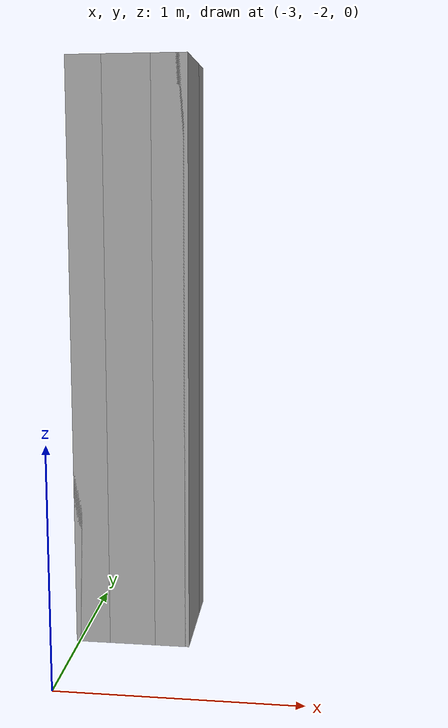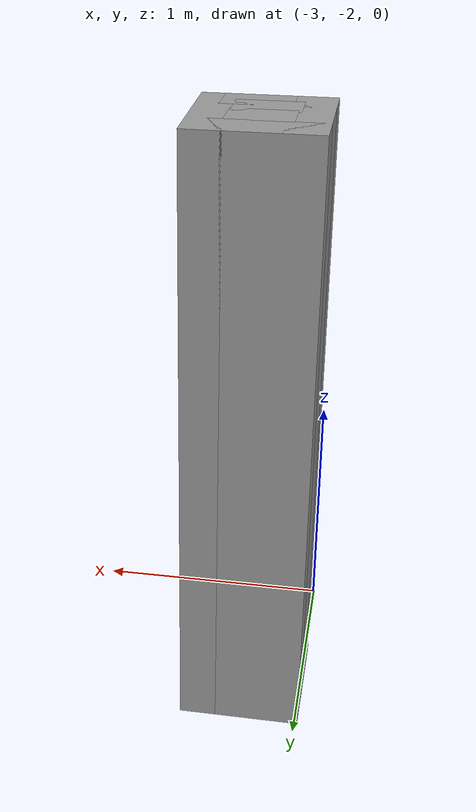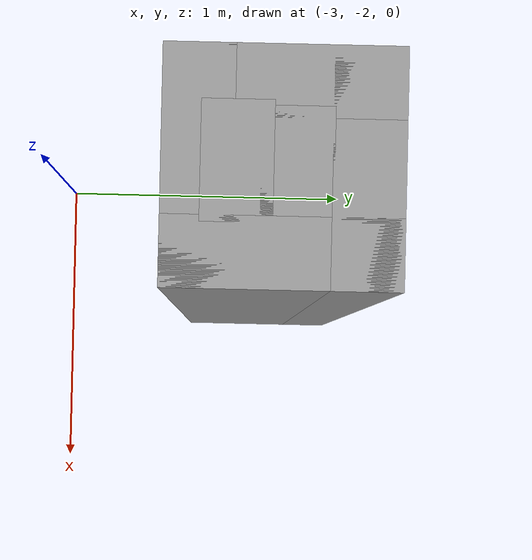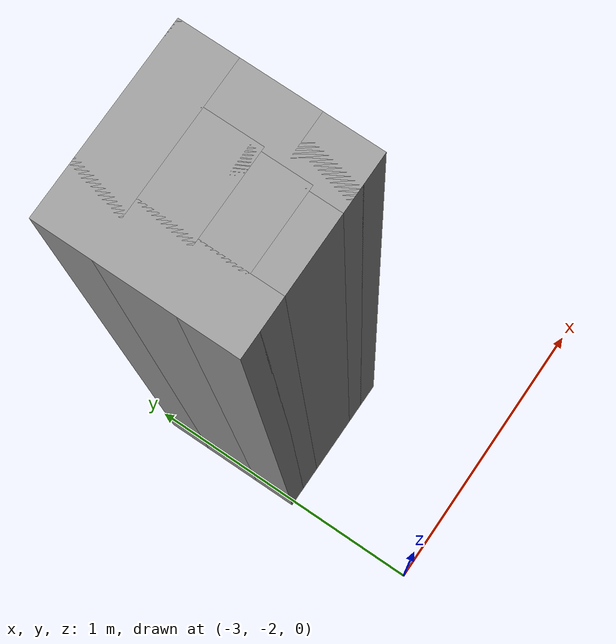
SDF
<?xml version='1.0'?>
<sdf version='1.7'>
  <model name='box05'>
    <pose>-1.50707 -0.773781 0 0 -0 0</pose>
    <link name='Wall_1'>
      <collision name='Wall_1_Collision'>
        <geometry>
          <box>
            <size>0.5 0.15 2.5</size>
          </box>
        </geometry>
        <pose>0 0 1.25 0 -0 0</pose>
      </collision>
      <visual name='Wall_1_Visual'>
        <pose>0 0 1.25 0 -0 0</pose>
        <geometry>
          <box>
            <size>0.5 0.15 2.5</size>
          </box>
        </geometry>
        <material>
          <script>
            <uri>file://media/materials/scripts/gazebo.material</uri>
            <name>Gazebo/Grey</name>
          </script>
          <ambient>1 1 1 1</ambient>
        </material>
        <meta>
          <layer>0</layer>
        </meta>
      </visual>
      <pose>-1.43206 -0.523781 0 0 -0 -1.5708</pose>
    </link>
    <link name='Wall_11'>
      <collision name='Wall_11_Collision'>
        <geometry>
          <box>
            <size>0.25 0.15 2.5</size>
          </box>
        </geometry>
        <pose>0 0 1.25 0 -0 0</pose>
      </collision>
      <visual name='Wall_11_Visual'>
        <pose>0 0 1.25 0 -0 0</pose>
        <geometry>
          <box>
            <size>0.25 0.15 2.5</size>
          </box>
        </geometry>
        <material>
          <script>
            <uri>file://media/materials/scripts/gazebo.material</uri>
            <name>Gazebo/Grey</name>
          </script>
          <ambient>1 1 1 1</ambient>
        </material>
        <meta>
          <layer>0</layer>
        </meta>
      </visual>
      <pose>-1.25682 -0.494826 0 0 -0 0</pose>
    </link>
    <link name='Wall_13'>
      <collision name='Wall_13_Collision'>
        <geometry>
          <box>
            <size>0.25 0.15 2.5</size>
          </box>
        </geometry>
        <pose>0 0 1.25 0 -0 0</pose>
      </collision>
      <visual name='Wall_13_Visual'>
        <pose>0 0 1.25 0 -0 0</pose>
        <geometry>
          <box>
            <size>0.25 0.15 2.5</size>
          </box>
        </geometry>
        <material>
          <script>
            <uri>file://media/materials/scripts/gazebo.material</uri>
            <name>Gazebo/Grey</name>
          </script>
          <ambient>1 1 1 1</ambient>
        </material>
        <meta>
          <layer>0</layer>
        </meta>
      </visual>
      <pose>-1.26803 -0.618185 0 0 -0 0</pose>
    </link>
    <link name='Wall_2'>
      <collision name='Wall_2_Collision'>
        <geometry>
          <box>
            <size>0.5 0.15 2.5</size>
          </box>
        </geometry>
        <pose>0 0 1.25 0 -0 0</pose>
      </collision>
      <visual name='Wall_2_Visual'>
        <pose>0 0 1.25 0 -0 0</pose>
        <geometry>
          <box>
            <size>0.5 0.15 2.5</size>
          </box>
        </geometry>
        <material>
          <script>
            <uri>file://media/materials/scripts/gazebo.material</uri>
            <name>Gazebo/Grey</name>
          </script>
          <ambient>1 1 1 1</ambient>
        </material>
        <meta>
          <layer>0</layer>
        </meta>
      </visual>
      <pose>-1.25707 -0.698781 0 0 -0 0</pose>
    </link>
    <link name='Wall_3'>
      <collision name='Wall_3_Collision'>
        <geometry>
          <box>
            <size>0.5 0.15 2.5</size>
          </box>
        </geometry>
        <pose>0 0 1.25 0 -0 0</pose>
      </collision>
      <visual name='Wall_3_Visual'>
        <pose>0 0 1.25 0 -0 0</pose>
        <geometry>
          <box>
            <size>0.5 0.15 2.5</size>
          </box>
        </geometry>
        <material>
          <script>
            <uri>file://media/materials/scripts/gazebo.material</uri>
            <name>Gazebo/Grey</name>
          </script>
          <ambient>1 1 1 1</ambient>
        </material>
        <meta>
          <layer>0</layer>
        </meta>
      </visual>
      <pose>-1.08207 -0.523781 0 0 -0 1.5708</pose>
    </link>
    <link name='Wall_4'>
      <collision name='Wall_4_Collision'>
        <geometry>
          <box>
            <size>0.5 0.15 2.5</size>
          </box>
        </geometry>
        <pose>0 0 1.25 0 -0 0</pose>
      </collision>
      <visual name='Wall_4_Visual'>
        <pose>0 0 1.25 0 -0 0</pose>
        <geometry>
          <box>
            <size>0.5 0.15 2.5</size>
          </box>
        </geometry>
        <material>
          <script>
            <uri>file://media/materials/scripts/gazebo.material</uri>
            <name>Gazebo/Grey</name>
          </script>
          <ambient>1 1 1 1</ambient>
        </material>
        <meta>
          <layer>0</layer>
        </meta>
      </visual>
      <pose>-1.25707 -0.348781 0 0 -0 3.14159</pose>
    </link>
    <static>1</static>
  </model>
</sdf>
